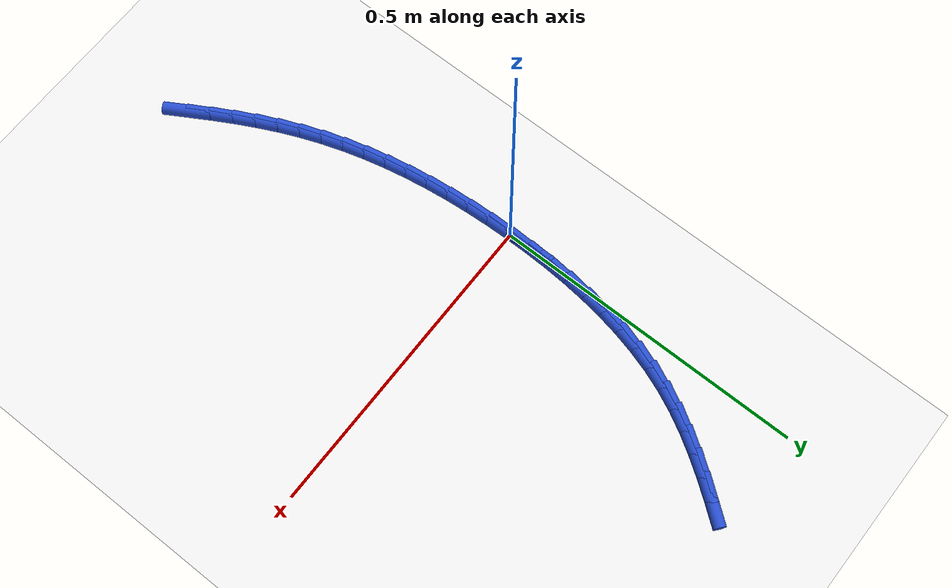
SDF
<sdf version="1.6">
 <world name="default">
  <model name="ground_plane">
   <static>1</static>
   <link name="link">
    <collision name="collision">
     <geometry><plane><normal>0 0 1</normal><size>100 100</size></plane></geometry>
     <surface><friction><ode><mu>100</mu><mu2>50</mu2></ode></friction></surface>
    </collision>
    <visual name="visual">
     <cast_shadows>0</cast_shadows>
     <geometry><plane><normal>0 0 1</normal><size>100 100</size></plane></geometry>
     <material>
      <script><uri>file://media/materials/scripts/gazebo.material</uri><name>Gazebo/WhiteGlow</name></script>
     </material>
    </visual>
   </link>
  </model>
  <model name="line">
   <link name="link_0">
    <pose>-8.673617379884035e-19 1.3877787807814457e-17 0.01 0 1.57 -1.5691896120427902</pose>
    <collision name="collision">
     <geometry><cylinder><radius>0.01</radius><length>0.08</length></cylinder></geometry>
    </collision>
    <visual name="visual">
     <material>
      <script><name>Gazebo/Blue</name><uri>file://media/materials/scripts/gazebo.material</uri></script>
     </material>
     <geometry><cylinder><radius>0.01</radius><length>0.08</length></cylinder></geometry>
    </visual>
   </link>
   <link name="link_1">
    <pose>-5.9115855555821446e-05 0.03679296814103423 0.01 0 1.57 1.541697354999295</pose>
    <collision name="collision">
     <geometry><cylinder><radius>0.01</radius><length>0.08</length></cylinder></geometry>
    </collision>
    <visual name="visual">
     <material>
      <script><name>Gazebo/Blue</name><uri>file://media/materials/scripts/gazebo.material</uri></script>
     </material>
     <geometry><cylinder><radius>0.01</radius><length>0.08</length></cylinder></geometry>
    </visual>
   </link>
   <link name="link_2">
    <pose>0.0010114618847792624 0.07357349633872798 0.01 0 1.57 1.5071595748917275</pose>
    <collision name="collision">
     <geometry><cylinder><radius>0.01</radius><length>0.08</length></cylinder></geometry>
    </collision>
    <visual name="visual">
     <material>
      <script><name>Gazebo/Blue</name><uri>file://media/materials/scripts/gazebo.material</uri></script>
     </material>
     <geometry><cylinder><radius>0.01</radius><length>0.08</length></cylinder></geometry>
    </visual>
   </link>
   <link name="link_3">
    <pose>0.0033449624620756143 0.11019305522677555 0.01 0 1.57 1.4684385178057604</pose>
    <collision name="collision">
     <geometry><cylinder><radius>0.01</radius><length>0.08</length></cylinder></geometry>
    </collision>
    <visual name="visual">
     <material>
      <script><name>Gazebo/Blue</name><uri>file://media/materials/scripts/gazebo.material</uri></script>
     </material>
     <geometry><cylinder><radius>0.01</radius><length>0.08</length></cylinder></geometry>
    </visual>
   </link>
   <link name="link_4">
    <pose>0.007074615117403593 0.14650311543887132 0.01 0 1.57 1.4251478518659704</pose>
    <collision name="collision">
     <geometry><cylinder><radius>0.01</radius><length>0.08</length></cylinder></geometry>
    </collision>
    <visual name="visual">
     <material>
      <script><name>Gazebo/Blue</name><uri>file://media/materials/scripts/gazebo.material</uri></script>
     </material>
     <geometry><cylinder><radius>0.01</radius><length>0.08</length></cylinder></geometry>
    </visual>
   </link>
   <link name="link_5">
    <pose>0.012333649091833553 0.18235514760870958 0.01 0 1.57 1.3768801714346215</pose>
    <collision name="collision">
     <geometry><cylinder><radius>0.01</radius><length>0.08</length></cylinder></geometry>
    </collision>
    <visual name="visual">
     <material>
      <script><name>Gazebo/Blue</name><uri>file://media/materials/scripts/gazebo.material</uri></script>
     </material>
     <geometry><cylinder><radius>0.01</radius><length>0.08</length></cylinder></geometry>
    </visual>
   </link>
   <link name="link_6">
    <pose>0.019255293626435868 0.21760062236998456 0.01 0 1.57 1.3232300511538342</pose>
    <collision name="collision">
     <geometry><cylinder><radius>0.01</radius><length>0.08</length></cylinder></geometry>
    </collision>
    <visual name="visual">
     <material>
      <script><name>Gazebo/Blue</name><uri>file://media/materials/scripts/gazebo.material</uri></script>
     </material>
     <geometry><cylinder><radius>0.01</radius><length>0.08</length></cylinder></geometry>
    </visual>
   </link>
   <link name="link_7">
    <pose>0.02797277796228087 0.25209101035639064 0.01 0 1.57 1.2638293466136068</pose>
    <collision name="collision">
     <geometry><cylinder><radius>0.01</radius><length>0.08</length></cylinder></geometry>
    </collision>
    <visual name="visual">
     <material>
      <script><name>Gazebo/Blue</name><uri>file://media/materials/scripts/gazebo.material</uri></script>
     </material>
     <geometry><cylinder><radius>0.01</radius><length>0.08</length></cylinder></geometry>
    </visual>
   </link>
   <link name="link_8">
    <pose>0.03861933134043894 0.28567778220162204 0.01 0 1.57 1.1983975268193925</pose>
    <collision name="collision">
     <geometry><cylinder><radius>0.01</radius><length>0.08</length></cylinder></geometry>
    </collision>
    <visual name="visual">
     <material>
      <script><name>Gazebo/Blue</name><uri>file://media/materials/scripts/gazebo.material</uri></script>
     </material>
     <geometry><cylinder><radius>0.01</radius><length>0.08</length></cylinder></geometry>
    </visual>
   </link>
   <link name="link_9">
    <pose>0.05132818300198046 0.3182124085393733 0.01 0 1.57 1.1280892747481899</pose>
    <collision name="collision">
     <geometry><cylinder><radius>0.01</radius><length>0.08</length></cylinder></geometry>
    </collision>
    <visual name="visual">
     <material>
      <script><name>Gazebo/Blue</name><uri>file://media/materials/scripts/gazebo.material</uri></script>
     </material>
     <geometry><cylinder><radius>0.01</radius><length>0.08</length></cylinder></geometry>
    </visual>
   </link>
   <link name="link_10">
    <pose>0.0661974743667256 0.3495761484289583 0.01 0 1.57 1.0628469063086112</pose>
    <collision name="collision">
     <geometry><cylinder><radius>0.01</radius><length>0.08</length></cylinder></geometry>
    </collision>
    <visual name="visual">
     <material>
      <script><name>Gazebo/Blue</name><uri>file://media/materials/scripts/gazebo.material</uri></script>
     </material>
     <geometry><cylinder><radius>0.01</radius><length>0.08</length></cylinder></geometry>
    </visual>
   </link>
   <link name="link_11">
    <pose>0.08306286624874386 0.3798730984762375 0.01 0 1.57 1.0077809539167577</pose>
    <collision name="collision">
     <geometry><cylinder><radius>0.01</radius><length>0.08</length></cylinder></geometry>
    </collision>
    <visual name="visual">
     <material>
      <script><name>Gazebo/Blue</name><uri>file://media/materials/scripts/gazebo.material</uri></script>
     </material>
     <geometry><cylinder><radius>0.01</radius><length>0.08</length></cylinder></geometry>
    </visual>
   </link>
   <link name="link_12">
    <pose>0.10164112701029362 0.40930829113407907 0.01 0 1.57 0.9632950776394239</pose>
    <collision name="collision">
     <geometry><cylinder><radius>0.01</radius><length>0.08</length></cylinder></geometry>
    </collision>
    <visual name="visual">
     <material>
      <script><name>Gazebo/Blue</name><uri>file://media/materials/scripts/gazebo.material</uri></script>
     </material>
     <geometry><cylinder><radius>0.01</radius><length>0.08</length></cylinder></geometry>
    </visual>
   </link>
   <link name="link_13">
    <pose>0.12164843693284727 0.4380872581169217 0.01 0 1.57 0.9294146926890351</pose>
    <collision name="collision">
     <geometry><cylinder><radius>0.01</radius><length>0.08</length></cylinder></geometry>
    </collision>
    <visual name="visual">
     <material>
      <script><name>Gazebo/Blue</name><uri>file://media/materials/scripts/gazebo.material</uri></script>
     </material>
     <geometry><cylinder><radius>0.01</radius><length>0.08</length></cylinder></geometry>
    </visual>
   </link>
   <link name="link_14">
    <pose>0.14280097629787689 0.4664155311392039 0.01 0 1.57 0.905958699298037</pose>
    <collision name="collision">
     <geometry><cylinder><radius>0.01</radius><length>0.08</length></cylinder></geometry>
    </collision>
    <visual name="visual">
     <material>
      <script><name>Gazebo/Blue</name><uri>file://media/materials/scripts/gazebo.material</uri></script>
     </material>
     <geometry><cylinder><radius>0.01</radius><length>0.08</length></cylinder></geometry>
    </visual>
   </link>
   <link name="link_175">
    <pose>0.14411611360656978 -0.5080291734856155 0.01 0 1.57 -1.043202488491767</pose>
    <collision name="collision">
     <geometry><cylinder><radius>0.01</radius><length>0.08</length></cylinder></geometry>
    </collision>
    <visual name="visual">
     <material>
      <script><name>Gazebo/Blue</name><uri>file://media/materials/scripts/gazebo.material</uri></script>
     </material>
     <geometry><cylinder><radius>0.01</radius><length>0.08</length></cylinder></geometry>
    </visual>
   </link>
   <link name="link_176">
    <pose>0.1260683614931744 -0.4770559770160428 0.01 0 1.57 -1.0670876159383853</pose>
    <collision name="collision">
     <geometry><cylinder><radius>0.01</radius><length>0.08</length></cylinder></geometry>
    </collision>
    <visual name="visual">
     <material>
      <script><name>Gazebo/Blue</name><uri>file://media/materials/scripts/gazebo.material</uri></script>
     </material>
     <geometry><cylinder><radius>0.01</radius><length>0.08</length></cylinder></geometry>
    </visual>
   </link>
   <link name="link_177">
    <pose>0.10892901877783608 -0.4459573078239157 0.01 0 1.57 -1.0958823941765052</pose>
    <collision name="collision">
     <geometry><cylinder><radius>0.01</radius><length>0.08</length></cylinder></geometry>
    </collision>
    <visual name="visual">
     <material>
      <script><name>Gazebo/Blue</name><uri>file://media/materials/scripts/gazebo.material</uri></script>
     </material>
     <geometry><cylinder><radius>0.01</radius><length>0.08</length></cylinder></geometry>
    </visual>
   </link>
   <link name="link_178">
    <pose>0.09281455950473025 -0.41461617621586977 0.01 0 1.57 -1.1295296245082111</pose>
    <collision name="collision">
     <geometry><cylinder><radius>0.01</radius><length>0.08</length></cylinder></geometry>
    </collision>
    <visual name="visual">
     <material>
      <script><name>Gazebo/Blue</name><uri>file://media/materials/scripts/gazebo.material</uri></script>
     </material>
     <geometry><cylinder><radius>0.01</radius><length>0.08</length></cylinder></geometry>
    </visual>
   </link>
   <link name="link_179">
    <pose>0.07784145771803272 -0.3829155924985418 0.01 0 1.57 -1.167872309383437</pose>
    <collision name="collision">
     <geometry><cylinder><radius>0.01</radius><length>0.08</length></cylinder></geometry>
    </collision>
    <visual name="visual">
     <material>
      <script><name>Gazebo/Blue</name><uri>file://media/materials/scripts/gazebo.material</uri></script>
     </material>
     <geometry><cylinder><radius>0.01</radius><length>0.08</length></cylinder></geometry>
    </visual>
   </link>
   <link name="link_180">
    <pose>0.06412618746191837 -0.3507385669785663 0.01 0 1.57 -1.2106252374500364</pose>
    <collision name="collision">
     <geometry><cylinder><radius>0.01</radius><length>0.08</length></cylinder></geometry>
    </collision>
    <visual name="visual">
     <material>
      <script><name>Gazebo/Blue</name><uri>file://media/materials/scripts/gazebo.material</uri></script>
     </material>
     <geometry><cylinder><radius>0.01</radius><length>0.08</length></cylinder></geometry>
    </visual>
   </link>
   <link name="link_181">
    <pose>0.051784986443138 -0.31796835927027345 0.01 0 1.57 -1.2556444569832945</pose>
    <collision name="collision">
     <geometry><cylinder><radius>0.01</radius><length>0.08</length></cylinder></geometry>
    </collision>
    <visual name="visual">
     <material>
      <script><name>Gazebo/Blue</name><uri>file://media/materials/scripts/gazebo.material</uri></script>
     </material>
     <geometry><cylinder><radius>0.01</radius><length>0.08</length></cylinder></geometry>
    </visual>
   </link>
   <link name="link_182">
    <pose>0.040886311967229576 -0.28453863159197756 0.01 0 1.57 -1.2988565158838912</pose>
    <collision name="collision">
     <geometry><cylinder><radius>0.01</radius><length>0.08</length></cylinder></geometry>
    </collision>
    <visual name="visual">
     <material>
      <script><name>Gazebo/Blue</name><uri>file://media/materials/scripts/gazebo.material</uri></script>
     </material>
     <geometry><cylinder><radius>0.01</radius><length>0.08</length></cylinder></geometry>
    </visual>
   </link>
   <link name="link_183">
    <pose>0.03139313584874946 -0.250494320728408 0.01 0 1.57 -1.3397646378229178</pose>
    <collision name="collision">
     <geometry><cylinder><radius>0.01</radius><length>0.08</length></cylinder></geometry>
    </collision>
    <visual name="visual">
     <material>
      <script><name>Gazebo/Blue</name><uri>file://media/materials/scripts/gazebo.material</uri></script>
     </material>
     <geometry><cylinder><radius>0.01</radius><length>0.08</length></cylinder></geometry>
    </visual>
   </link>
   <link name="link_184">
    <pose>0.0232543288373717 -0.21589523839985356 0.01 0 1.57 -1.3784263815975497</pose>
    <collision name="collision">
     <geometry><cylinder><radius>0.01</radius><length>0.08</length></cylinder></geometry>
    </collision>
    <visual name="visual">
     <material>
      <script><name>Gazebo/Blue</name><uri>file://media/materials/scripts/gazebo.material</uri></script>
     </material>
     <geometry><cylinder><radius>0.01</radius><length>0.08</length></cylinder></geometry>
    </visual>
   </link>
   <link name="link_185">
    <pose>0.01641876168277031 -0.18080119632660266 0.01 0 1.57 -1.414919937202355</pose>
    <collision name="collision">
     <geometry><cylinder><radius>0.01</radius><length>0.08</length></cylinder></geometry>
    </collision>
    <visual name="visual">
     <material>
      <script><name>Gazebo/Blue</name><uri>file://media/materials/scripts/gazebo.material</uri></script>
     </material>
     <geometry><cylinder><radius>0.01</radius><length>0.08</length></cylinder></geometry>
    </visual>
   </link>
   <link name="link_186">
    <pose>0.010835305134619423 -0.1452720062289444 0.01 0 1.57 -1.449338000199587</pose>
    <collision name="collision">
     <geometry><cylinder><radius>0.01</radius><length>0.08</length></cylinder></geometry>
    </collision>
    <visual name="visual">
     <material>
      <script><name>Gazebo/Blue</name><uri>file://media/materials/scripts/gazebo.material</uri></script>
     </material>
     <geometry><cylinder><radius>0.01</radius><length>0.08</length></cylinder></geometry>
    </visual>
   </link>
   <link name="link_187">
    <pose>0.006452829942592843 -0.10936747982716613 0.01 0 1.57 -1.481782627067053</pose>
    <collision name="collision">
     <geometry><cylinder><radius>0.01</radius><length>0.08</length></cylinder></geometry>
    </collision>
    <visual name="visual">
     <material>
      <script><name>Gazebo/Blue</name><uri>file://media/materials/scripts/gazebo.material</uri></script>
     </material>
     <geometry><cylinder><radius>0.01</radius><length>0.08</length></cylinder></geometry>
    </visual>
   </link>
   <link name="link_188">
    <pose>0.0032202068563647254 -0.0731474288415569 0.01 0 1.57 -1.5123610648374317</pose>
    <collision name="collision">
     <geometry><cylinder><radius>0.01</radius><length>0.08</length></cylinder></geometry>
    </collision>
    <visual name="visual">
     <material>
      <script><name>Gazebo/Blue</name><uri>file://media/materials/scripts/gazebo.material</uri></script>
     </material>
     <geometry><cylinder><radius>0.01</radius><length>0.08</length></cylinder></geometry>
    </visual>
   </link>
   <link name="link_189">
    <pose>0.0010863066256091036 -0.03667166499240539 0.01 0 1.57 -1.5411824804939334</pose>
    <collision name="collision">
     <geometry><cylinder><radius>0.01</radius><length>0.08</length></cylinder></geometry>
    </collision>
    <visual name="visual">
     <material>
      <script><name>Gazebo/Blue</name><uri>file://media/materials/scripts/gazebo.material</uri></script>
     </material>
     <geometry><cylinder><radius>0.01</radius><length>0.08</length></cylinder></geometry>
    </visual>
   </link>
   <link name="link_190">
    <pose>6.071532165918825e-18 -1.1796119636642288e-16 0.01 0 1.57 -1.5683554799191037</pose>
    <collision name="collision">
     <geometry><cylinder><radius>0.01</radius><length>0.08</length></cylinder></geometry>
    </collision>
    <visual name="visual">
     <material>
      <script><name>Gazebo/Blue</name><uri>file://media/materials/scripts/gazebo.material</uri></script>
     </material>
     <geometry><cylinder><radius>0.01</radius><length>0.08</length></cylinder></geometry>
    </visual>
   </link>
   <link name="link_191">
    <pose>-8.984227078854146e-05 0.036807754415370396 0.01 0 1.57 -1.568355479919104</pose>
    <collision name="collision">
     <geometry><cylinder><radius>0.01</radius><length>0.08</length></cylinder></geometry>
    </collision>
    <visual name="visual">
     <material>
      <script><name>Gazebo/Blue</name><uri>file://media/materials/scripts/gazebo.material</uri></script>
     </material>
     <geometry><cylinder><radius>0.01</radius><length>0.08</length></cylinder></geometry>
    </visual>
   </link>
  </model>
 </world>
</sdf>
